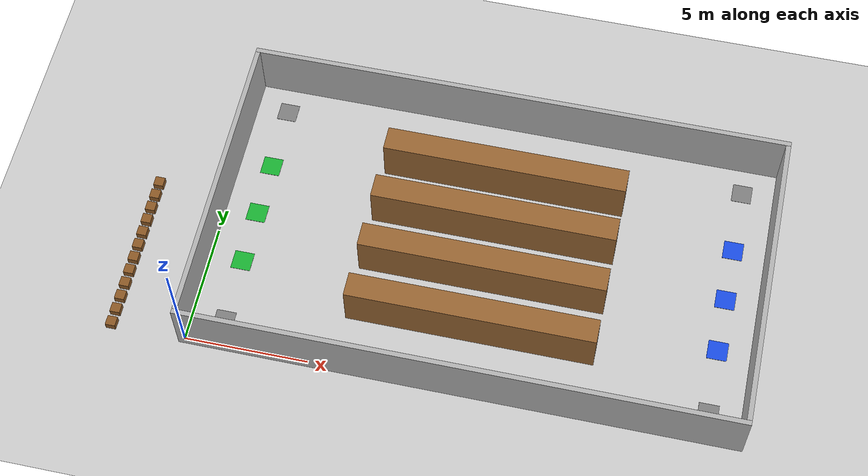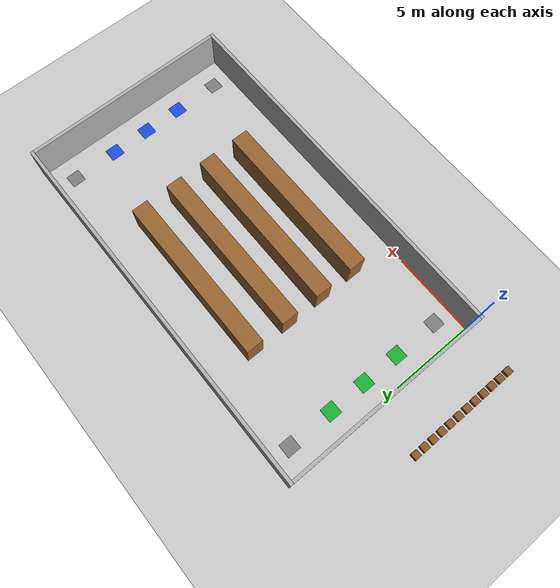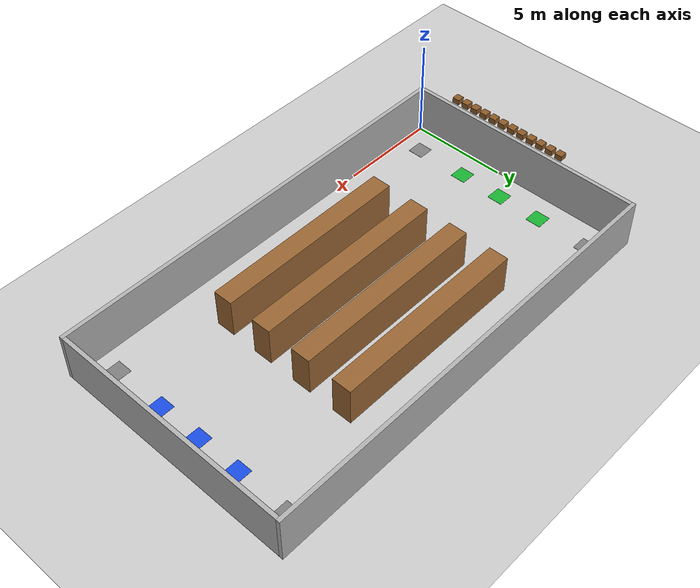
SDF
<?xml version="1.0" ?>
<!-- GENERATED by tools/layoutgen - do not edit. -->
<sdf version="1.9">
  <world name="standard">
    <physics name="default_physics" type="ode">
      <max_step_size>0.004</max_step_size>
      <real_time_factor>1.0</real_time_factor>
    </physics>
    <plugin filename="gz-sim-physics-system" name="gz::sim::systems::Physics"/>
    <plugin filename="gz-sim-user-commands-system" name="gz::sim::systems::UserCommands"/>
    <plugin filename="gz-sim-scene-broadcaster-system" name="gz::sim::systems::SceneBroadcaster"/>
    <plugin filename="gz-sim-sensors-system" name="gz::sim::systems::Sensors">
      <render_engine>ogre2</render_engine>
    </plugin>
    <light type="directional" name="sun">
      <cast_shadows>true</cast_shadows>
      <pose>0 0 10 0 0 0</pose>
      <diffuse>0.9 0.9 0.9 1</diffuse>
      <specular>0.2 0.2 0.2 1</specular>
      <direction>-0.5 0.1 -0.9</direction>
    </light>
    <model name="ground_plane">
      <static>true</static>
      <link name="link">
        <collision name="collision"><geometry><plane><normal>0 0 1</normal><size>100 100</size></plane></geometry></collision>
        <visual name="visual"><geometry><plane><normal>0 0 1</normal><size>100 100</size></plane></geometry><material><ambient>0.8 0.8 0.8 1</ambient><diffuse>0.8 0.8 0.8 1</diffuse></material></visual>
      </link>
    </model>
    <model name="wall_south">
      <static>true</static>
      <pose>11 -0.1 1.25 0 0 0</pose>
      <link name="link">
        <collision name="collision"><geometry><box><size>22.4 0.2 2.5</size></box></geometry></collision>
        <visual name="visual"><geometry><box><size>22.4 0.2 2.5</size></box></geometry><material><ambient>0.7 0.7 0.7 1</ambient><diffuse>0.7 0.7 0.7 1</diffuse></material></visual>
      </link>
    </model>
    <model name="wall_north">
      <static>true</static>
      <pose>11 12.4 1.25 0 0 0</pose>
      <link name="link">
        <collision name="collision"><geometry><box><size>22.4 0.2 2.5</size></box></geometry></collision>
        <visual name="visual"><geometry><box><size>22.4 0.2 2.5</size></box></geometry><material><ambient>0.7 0.7 0.7 1</ambient><diffuse>0.7 0.7 0.7 1</diffuse></material></visual>
      </link>
    </model>
    <model name="wall_west">
      <static>true</static>
      <pose>-0.1 6.15 1.25 0 0 0</pose>
      <link name="link">
        <collision name="collision"><geometry><box><size>0.2 12.3 2.5</size></box></geometry></collision>
        <visual name="visual"><geometry><box><size>0.2 12.3 2.5</size></box></geometry><material><ambient>0.7 0.7 0.7 1</ambient><diffuse>0.7 0.7 0.7 1</diffuse></material></visual>
      </link>
    </model>
    <model name="wall_east">
      <static>true</static>
      <pose>22.1 6.15 1.25 0 0 0</pose>
      <link name="link">
        <collision name="collision"><geometry><box><size>0.2 12.3 2.5</size></box></geometry></collision>
        <visual name="visual"><geometry><box><size>0.2 12.3 2.5</size></box></geometry><material><ambient>0.7 0.7 0.7 1</ambient><diffuse>0.7 0.7 0.7 1</diffuse></material></visual>
      </link>
    </model>
    <model name="rack_R1">
      <static>true</static>
      <pose>11 2.7 1 0 0 0</pose>
      <link name="link">
        <collision name="collision"><geometry><box><size>10 1 2</size></box></geometry></collision>
        <visual name="visual"><geometry><box><size>10 1 2</size></box></geometry><material><ambient>0.6 0.4 0.2 1</ambient><diffuse>0.6 0.4 0.2 1</diffuse></material></visual>
      </link>
    </model>
    <model name="rack_R2">
      <static>true</static>
      <pose>11 5 1 0 0 0</pose>
      <link name="link">
        <collision name="collision"><geometry><box><size>10 1 2</size></box></geometry></collision>
        <visual name="visual"><geometry><box><size>10 1 2</size></box></geometry><material><ambient>0.6 0.4 0.2 1</ambient><diffuse>0.6 0.4 0.2 1</diffuse></material></visual>
      </link>
    </model>
    <model name="rack_R3">
      <static>true</static>
      <pose>11 7.3 1 0 0 0</pose>
      <link name="link">
        <collision name="collision"><geometry><box><size>10 1 2</size></box></geometry></collision>
        <visual name="visual"><geometry><box><size>10 1 2</size></box></geometry><material><ambient>0.6 0.4 0.2 1</ambient><diffuse>0.6 0.4 0.2 1</diffuse></material></visual>
      </link>
    </model>
    <model name="rack_R4">
      <static>true</static>
      <pose>11 9.6 1 0 0 0</pose>
      <link name="link">
        <collision name="collision"><geometry><box><size>10 1 2</size></box></geometry></collision>
        <visual name="visual"><geometry><box><size>10 1 2</size></box></geometry><material><ambient>0.6 0.4 0.2 1</ambient><diffuse>0.6 0.4 0.2 1</diffuse></material></visual>
      </link>
    </model>
    <model name="station_L1">
      <static>true</static>
      <pose>1.3 3.85 0.005 0 0 0</pose>
      <link name="link">
        <visual name="visual"><geometry><box><size>0.8 0.8 0.01</size></box></geometry><material><ambient>0.1 0.7 0.2 1</ambient><diffuse>0.1 0.7 0.2 1</diffuse></material></visual>
      </link>
    </model>
    <model name="station_L2">
      <static>true</static>
      <pose>1.3 6.15 0.005 0 0 0</pose>
      <link name="link">
        <visual name="visual"><geometry><box><size>0.8 0.8 0.01</size></box></geometry><material><ambient>0.1 0.7 0.2 1</ambient><diffuse>0.1 0.7 0.2 1</diffuse></material></visual>
      </link>
    </model>
    <model name="station_L3">
      <static>true</static>
      <pose>1.3 8.45 0.005 0 0 0</pose>
      <link name="link">
        <visual name="visual"><geometry><box><size>0.8 0.8 0.01</size></box></geometry><material><ambient>0.1 0.7 0.2 1</ambient><diffuse>0.1 0.7 0.2 1</diffuse></material></visual>
      </link>
    </model>
    <model name="station_D1">
      <static>true</static>
      <pose>20.7 3.85 0.005 0 0 0</pose>
      <link name="link">
        <visual name="visual"><geometry><box><size>0.8 0.8 0.01</size></box></geometry><material><ambient>0.1 0.3 0.9 1</ambient><diffuse>0.1 0.3 0.9 1</diffuse></material></visual>
      </link>
    </model>
    <model name="station_D2">
      <static>true</static>
      <pose>20.7 6.15 0.005 0 0 0</pose>
      <link name="link">
        <visual name="visual"><geometry><box><size>0.8 0.8 0.01</size></box></geometry><material><ambient>0.1 0.3 0.9 1</ambient><diffuse>0.1 0.3 0.9 1</diffuse></material></visual>
      </link>
    </model>
    <model name="station_D3">
      <static>true</static>
      <pose>20.7 8.45 0.005 0 0 0</pose>
      <link name="link">
        <visual name="visual"><geometry><box><size>0.8 0.8 0.01</size></box></geometry><material><ambient>0.1 0.3 0.9 1</ambient><diffuse>0.1 0.3 0.9 1</diffuse></material></visual>
      </link>
    </model>
    <model name="station_P1">
      <static>true</static>
      <pose>1.3 1.1 0.005 0 0 0</pose>
      <link name="link">
        <visual name="visual"><geometry><box><size>0.8 0.8 0.01</size></box></geometry><material><ambient>0.5 0.5 0.5 1</ambient><diffuse>0.5 0.5 0.5 1</diffuse></material></visual>
      </link>
    </model>
    <model name="station_P2">
      <static>true</static>
      <pose>1.3 11.2 0.005 0 0 0</pose>
      <link name="link">
        <visual name="visual"><geometry><box><size>0.8 0.8 0.01</size></box></geometry><material><ambient>0.5 0.5 0.5 1</ambient><diffuse>0.5 0.5 0.5 1</diffuse></material></visual>
      </link>
    </model>
    <model name="station_P3">
      <static>true</static>
      <pose>20.7 1.1 0.005 0 0 0</pose>
      <link name="link">
        <visual name="visual"><geometry><box><size>0.8 0.8 0.01</size></box></geometry><material><ambient>0.5 0.5 0.5 1</ambient><diffuse>0.5 0.5 0.5 1</diffuse></material></visual>
      </link>
    </model>
    <model name="station_P4">
      <static>true</static>
      <pose>20.7 11.2 0.005 0 0 0</pose>
      <link name="link">
        <visual name="visual"><geometry><box><size>0.8 0.8 0.01</size></box></geometry><material><ambient>0.5 0.5 0.5 1</ambient><diffuse>0.5 0.5 0.5 1</diffuse></material></visual>
      </link>
    </model>
    <model name="pkg_00">
      <static>false</static>
      <pose>-3 0 0.15 0 0 0</pose>
      <link name="link">
        <gravity>false</gravity>
        <visual name="visual"><geometry><box><size>0.4 0.4 0.3</size></box></geometry><material><ambient>0.55 0.35 0.15 1</ambient><diffuse>0.55 0.35 0.15 1</diffuse></material></visual>
      </link>
    </model>
    <model name="pkg_01">
      <static>false</static>
      <pose>-3 0.6 0.15 0 0 0</pose>
      <link name="link">
        <gravity>false</gravity>
        <visual name="visual"><geometry><box><size>0.4 0.4 0.3</size></box></geometry><material><ambient>0.55 0.35 0.15 1</ambient><diffuse>0.55 0.35 0.15 1</diffuse></material></visual>
      </link>
    </model>
    <model name="pkg_02">
      <static>false</static>
      <pose>-3 1.2 0.15 0 0 0</pose>
      <link name="link">
        <gravity>false</gravity>
        <visual name="visual"><geometry><box><size>0.4 0.4 0.3</size></box></geometry><material><ambient>0.55 0.35 0.15 1</ambient><diffuse>0.55 0.35 0.15 1</diffuse></material></visual>
      </link>
    </model>
    <model name="pkg_03">
      <static>false</static>
      <pose>-3 1.8 0.15 0 0 0</pose>
      <link name="link">
        <gravity>false</gravity>
        <visual name="visual"><geometry><box><size>0.4 0.4 0.3</size></box></geometry><material><ambient>0.55 0.35 0.15 1</ambient><diffuse>0.55 0.35 0.15 1</diffuse></material></visual>
      </link>
    </model>
    <model name="pkg_04">
      <static>false</static>
      <pose>-3 2.4 0.15 0 0 0</pose>
      <link name="link">
        <gravity>false</gravity>
        <visual name="visual"><geometry><box><size>0.4 0.4 0.3</size></box></geometry><material><ambient>0.55 0.35 0.15 1</ambient><diffuse>0.55 0.35 0.15 1</diffuse></material></visual>
      </link>
    </model>
    <model name="pkg_05">
      <static>false</static>
      <pose>-3 3 0.15 0 0 0</pose>
      <link name="link">
        <gravity>false</gravity>
        <visual name="visual"><geometry><box><size>0.4 0.4 0.3</size></box></geometry><material><ambient>0.55 0.35 0.15 1</ambient><diffuse>0.55 0.35 0.15 1</diffuse></material></visual>
      </link>
    </model>
    <model name="pkg_06">
      <static>false</static>
      <pose>-3 3.6 0.15 0 0 0</pose>
      <link name="link">
        <gravity>false</gravity>
        <visual name="visual"><geometry><box><size>0.4 0.4 0.3</size></box></geometry><material><ambient>0.55 0.35 0.15 1</ambient><diffuse>0.55 0.35 0.15 1</diffuse></material></visual>
      </link>
    </model>
    <model name="pkg_07">
      <static>false</static>
      <pose>-3 4.2 0.15 0 0 0</pose>
      <link name="link">
        <gravity>false</gravity>
        <visual name="visual"><geometry><box><size>0.4 0.4 0.3</size></box></geometry><material><ambient>0.55 0.35 0.15 1</ambient><diffuse>0.55 0.35 0.15 1</diffuse></material></visual>
      </link>
    </model>
    <model name="pkg_08">
      <static>false</static>
      <pose>-3 4.8 0.15 0 0 0</pose>
      <link name="link">
        <gravity>false</gravity>
        <visual name="visual"><geometry><box><size>0.4 0.4 0.3</size></box></geometry><material><ambient>0.55 0.35 0.15 1</ambient><diffuse>0.55 0.35 0.15 1</diffuse></material></visual>
      </link>
    </model>
    <model name="pkg_09">
      <static>false</static>
      <pose>-3 5.4 0.15 0 0 0</pose>
      <link name="link">
        <gravity>false</gravity>
        <visual name="visual"><geometry><box><size>0.4 0.4 0.3</size></box></geometry><material><ambient>0.55 0.35 0.15 1</ambient><diffuse>0.55 0.35 0.15 1</diffuse></material></visual>
      </link>
    </model>
    <model name="pkg_10">
      <static>false</static>
      <pose>-3 6 0.15 0 0 0</pose>
      <link name="link">
        <gravity>false</gravity>
        <visual name="visual"><geometry><box><size>0.4 0.4 0.3</size></box></geometry><material><ambient>0.55 0.35 0.15 1</ambient><diffuse>0.55 0.35 0.15 1</diffuse></material></visual>
      </link>
    </model>
    <model name="pkg_11">
      <static>false</static>
      <pose>-3 6.6 0.15 0 0 0</pose>
      <link name="link">
        <gravity>false</gravity>
        <visual name="visual"><geometry><box><size>0.4 0.4 0.3</size></box></geometry><material><ambient>0.55 0.35 0.15 1</ambient><diffuse>0.55 0.35 0.15 1</diffuse></material></visual>
      </link>
    </model>
  </world>
</sdf>
